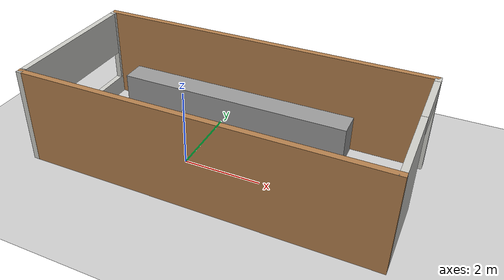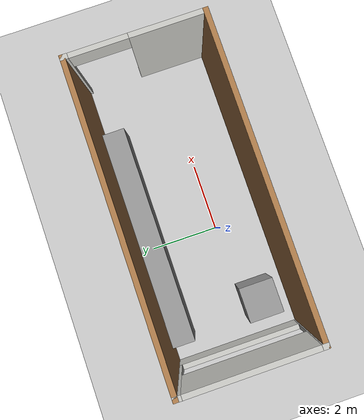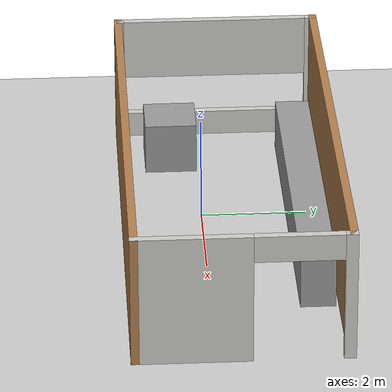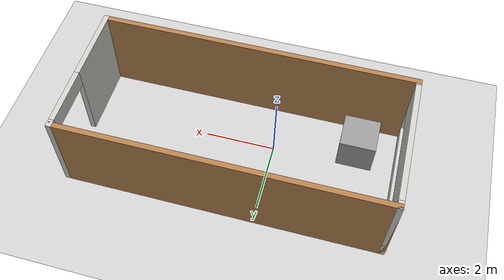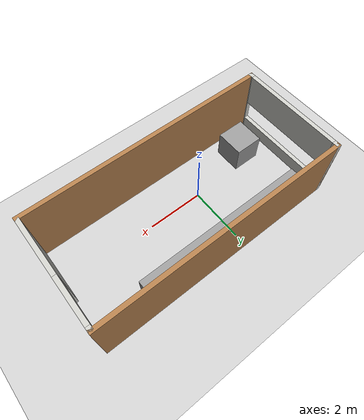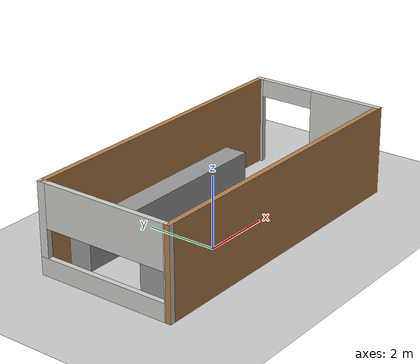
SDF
<sdf version="1.7">
 <world name="default">
  <light name="sun" type="directional">
   <pose>0 0 10 0 -0 0</pose>
   <diffuse>0.8 0.8 0.8 1</diffuse>
   <specular>0.2 0.2 0.2 1</specular>
   <attenuation>
    <range>1000</range>
    <constant>0.9</constant>
    <linear>0.01</linear>
    <quadratic>0.001</quadratic>
   </attenuation>
   <direction>-0.5 0.1 -0.9</direction>
   <spot><inner_angle>0</inner_angle><outer_angle>0</outer_angle><falloff>0</falloff></spot>
  </light>
  <model name="ground_plane">
   <static>1</static>
   <link name="link">
    <collision name="collision">
     <geometry><plane><normal>0 0 1</normal><size>100 100</size></plane></geometry>
     <surface>
      <contact><collide_bitmask>65535</collide_bitmask></contact>
      <friction><ode><mu>100</mu><mu2>50</mu2></ode></friction>
     </surface>
    </collision>
    <visual name="visual">
     <cast_shadows>0</cast_shadows>
     <geometry><plane><normal>0 0 1</normal><size>100 100</size></plane></geometry>
     <material>
      <script><uri>file://media/materials/scripts/gazebo.material</uri><name>Gazebo/Grey</name></script>
     </material>
    </visual>
   </link>
  </model>
  <gravity>0 0 -9.8</gravity>
  <magnetic_field>6e-06 2.3e-05 -4.2e-05</magnetic_field>
  <atmosphere type="adiabatic"/>
  <physics type="ode">
   <max_step_size>0.001</max_step_size>
   <real_time_factor>1</real_time_factor>
   <real_time_update_rate>1000</real_time_update_rate>
  </physics>
  <scene><ambient>0.4 0.4 0.4 1</ambient><background>0.7 0.7 0.7 1</background><shadows>1</shadows></scene>
  <spherical_coordinates>
   <surface_model>EARTH_WGS84</surface_model>
   <latitude_deg>0</latitude_deg>
   <longitude_deg>0</longitude_deg>
   <elevation>0</elevation>
   <heading_deg>0</heading_deg>
  </spherical_coordinates>
  <model name="my_house2">
   <pose>0.930986 0.470378 0 0 -0 0</pose>
   <link name="Wall_18">
    <collision name="Wall_18_Collision">
     <geometry><box><size>9 0.15 2.5</size></box></geometry>
     <pose>0 0 1.25 0 -0 0</pose>
    </collision>
    <visual name="Wall_18_Visual">
     <pose>0 0 1.25 0 -0 0</pose>
     <geometry><box><size>9 0.15 2.5</size></box></geometry>
     <material>
      <script><uri>file://media/materials/scripts/gazebo.material</uri><name>Gazebo/Wood</name></script>
      <ambient>1 1 1 1</ambient>
     </material>
     <meta><layer>0</layer></meta>
    </visual>
    <pose>-0 1.925 0 0 -0 0</pose>
   </link>
   <link name="Wall_19">
    <pose>4.425 0 0 0 -0 -1.5708</pose>
    <visual name="Wall_19_Visual_0">
     <pose>-1.89 0 1.25 0 -0 0</pose>
     <geometry><box><size>0.22 0.15 2.5</size></box></geometry>
     <material>
      <script><uri>file://media/materials/scripts/gazebo.material</uri><name>Gazebo/CeilingTiled</name></script>
      <ambient>0.760784 0.662745 0.627451 1</ambient>
     </material>
     <meta><layer>0</layer></meta>
    </visual>
    <collision name="Wall_19_Collision_0">
     <geometry><box><size>0.22 0.15 2.5</size></box></geometry>
     <pose>-1.89 0 1.25 0 -0 0</pose>
    </collision>
    <visual name="Wall_19_Visual_1">
     <pose>0.915 0 1.25 0 -0 0</pose>
     <geometry><box><size>2.17 0.15 2.5</size></box></geometry>
     <material>
      <script><uri>file://media/materials/scripts/gazebo.material</uri><name>Gazebo/CeilingTiled</name></script>
      <ambient>0.760784 0.662745 0.627451 1</ambient>
     </material>
     <meta><layer>0</layer></meta>
    </visual>
    <collision name="Wall_19_Collision_1">
     <geometry><box><size>2.17 0.15 2.5</size></box></geometry>
     <pose>0.915 0 1.25 0 -0 0</pose>
    </collision>
    <visual name="Wall_19_Visual_2">
     <pose>-0.975 0 2.25 0 -0 0</pose>
     <geometry><box><size>1.61 0.15 0.5</size></box></geometry>
     <material>
      <script><uri>file://media/materials/scripts/gazebo.material</uri><name>Gazebo/CeilingTiled</name></script>
      <ambient>0.760784 0.662745 0.627451 1</ambient>
     </material>
     <meta><layer>0</layer></meta>
    </visual>
    <collision name="Wall_19_Collision_2">
     <geometry><box><size>1.61 0.15 0.5</size></box></geometry>
     <pose>-0.975 0 2.25 0 -0 0</pose>
    </collision>
   </link>
   <link name="Wall_22">
    <collision name="Wall_22_Collision">
     <geometry><box><size>9 0.15 2.5</size></box></geometry>
     <pose>0 0 1.25 0 -0 0</pose>
    </collision>
    <visual name="Wall_22_Visual">
     <pose>0 0 1.25 0 -0 0</pose>
     <geometry><box><size>9 0.15 2.5</size></box></geometry>
     <material>
      <script><uri>file://media/materials/scripts/gazebo.material</uri><name>Gazebo/Wood</name></script>
      <ambient>1 1 1 1</ambient>
     </material>
     <meta><layer>0</layer></meta>
    </visual>
    <pose>-0 -1.925 0 0 -0 3.14159</pose>
   </link>
   <link name="Wall_23">
    <pose>-4.425 0 0 0 -0 1.5708</pose>
    <visual name="Wall_23_Visual_0">
     <pose>-1.9075 0 1.25 0 -0 0</pose>
     <geometry><box><size>0.185 0.15 2.5</size></box></geometry>
     <material>
      <script><uri>file://media/materials/scripts/gazebo.material</uri><name>Gazebo/CeilingTiled</name></script>
      <ambient>0.760784 0.662745 0.627451 1</ambient>
     </material>
     <meta><layer>0</layer></meta>
    </visual>
    <collision name="Wall_23_Collision_0">
     <geometry><box><size>0.185 0.15 2.5</size></box></geometry>
     <pose>-1.9075 0 1.25 0 -0 0</pose>
    </collision>
    <visual name="Wall_23_Visual_1">
     <pose>0.0925 0 0.25 0 -0 0</pose>
     <geometry><box><size>3.815 0.15 0.5</size></box></geometry>
     <material>
      <script><uri>file://media/materials/scripts/gazebo.material</uri><name>Gazebo/CeilingTiled</name></script>
      <ambient>0.760784 0.662745 0.627451 1</ambient>
     </material>
     <meta><layer>0</layer></meta>
    </visual>
    <collision name="Wall_23_Collision_1">
     <geometry><box><size>3.815 0.15 0.5</size></box></geometry>
     <pose>0.0925 0 0.25 0 -0 0</pose>
    </collision>
    <visual name="Wall_23_Visual_2">
     <pose>1.8825 0 1.5 0 -0 0</pose>
     <geometry><box><size>0.235 0.15 2</size></box></geometry>
     <material>
      <script><uri>file://media/materials/scripts/gazebo.material</uri><name>Gazebo/CeilingTiled</name></script>
      <ambient>0.760784 0.662745 0.627451 1</ambient>
     </material>
     <meta><layer>0</layer></meta>
    </visual>
    <collision name="Wall_23_Collision_2">
     <geometry><box><size>0.235 0.15 2</size></box></geometry>
     <pose>1.8825 0 1.5 0 -0 0</pose>
    </collision>
    <visual name="Wall_23_Visual_3">
     <pose>-0.025 0 1.9 0 -0 0</pose>
     <geometry><box><size>3.58 0.15 1.2</size></box></geometry>
     <material>
      <script><uri>file://media/materials/scripts/gazebo.material</uri><name>Gazebo/CeilingTiled</name></script>
      <ambient>0.760784 0.662745 0.627451 1</ambient>
     </material>
     <meta><layer>0</layer></meta>
    </visual>
    <collision name="Wall_23_Collision_3">
     <geometry><box><size>3.58 0.15 1.2</size></box></geometry>
     <pose>-0.025 0 1.9 0 -0 0</pose>
    </collision>
   </link>
   <static>1</static>
  </model>
  <model name="my_bouse3">
   <link name="link">
    <inertial>
     <mass>4.14853</mass>
     <inertia><ixx>0.493035</ixx><ixy>0</ixy><ixz>0</ixz><iyy>14.3073</iyy><iyz>0</iyz><izz>14.109</izz></inertia>
    </inertial>
    <visual name="visual">
     <geometry><box><size>6.35494 0.652801 1</size></box></geometry>
     <material>
      <script><name>Gazebo/Grey</name><uri>file://media/materials/scripts/gazebo.material</uri></script>
      <shader type="pixel"/>
     </material>
    </visual>
    <collision name="collision">
     <geometry><box><size>6.35494 0.652801 1</size></box></geometry>
     <surface>
      <friction>
       <ode><mu>1</mu><mu2>1</mu2><fdir1>0 0 0</fdir1><slip1>0</slip1><slip2>0</slip2></ode>
       <torsional>
        <coefficient>1</coefficient>
        <patch_radius>0</patch_radius>
        <surface_radius>0</surface_radius>
        <use_patch_radius>1</use_patch_radius>
        <ode><slip>0</slip></ode>
       </torsional>
      </friction>
      <bounce><restitution_coefficient>0</restitution_coefficient><threshold>1e+06</threshold></bounce>
      <contact>
       <collide_without_contact>0</collide_without_contact>
       <collide_without_contact_bitmask>1</collide_without_contact_bitmask>
       <collide_bitmask>1</collide_bitmask>
       <ode>
        <soft_cfm>0</soft_cfm>
        <soft_erp>0.2</soft_erp>
        <kp>1e+13</kp>
        <kd>1</kd>
        <max_vel>0.01</max_vel>
        <min_depth>0</min_depth>
       </ode>
       <bullet>
        <split_impulse>1</split_impulse>
        <split_impulse_penetration_threshold>-0.01</split_impulse_penetration_threshold>
        <soft_cfm>0</soft_cfm>
        <soft_erp>0.2</soft_erp>
        <kp>1e+13</kp>
        <kd>1</kd>
       </bullet>
      </contact>
     </surface>
    </collision>
   </link>
   <static>0</static>
   <pose>0.413742 1.94327 0.5 0 -0 0</pose>
  </model>
  <model name="unit_box">
   <pose>-2.31388 -0.496577 0.5 0 -0 0</pose>
   <link name="link">
    <inertial>
     <mass>1</mass>
     <inertia>
      <ixx>0.166667</ixx>
      <ixy>0</ixy>
      <ixz>0</ixz>
      <iyy>0.166667</iyy>
      <iyz>0</iyz>
      <izz>0.166667</izz>
     </inertia>
    </inertial>
    <collision name="collision"><geometry><box><size>1 1 1</size></box></geometry></collision>
    <visual name="visual">
     <geometry><box><size>1 1 1</size></box></geometry>
     <material>
      <script><name>Gazebo/Grey</name><uri>file://media/materials/scripts/gazebo.material</uri></script>
     </material>
    </visual>
   </link>
  </model>
 </world>
</sdf>
